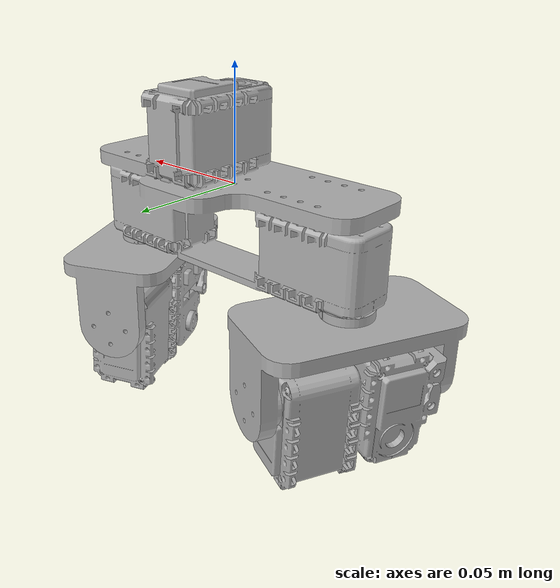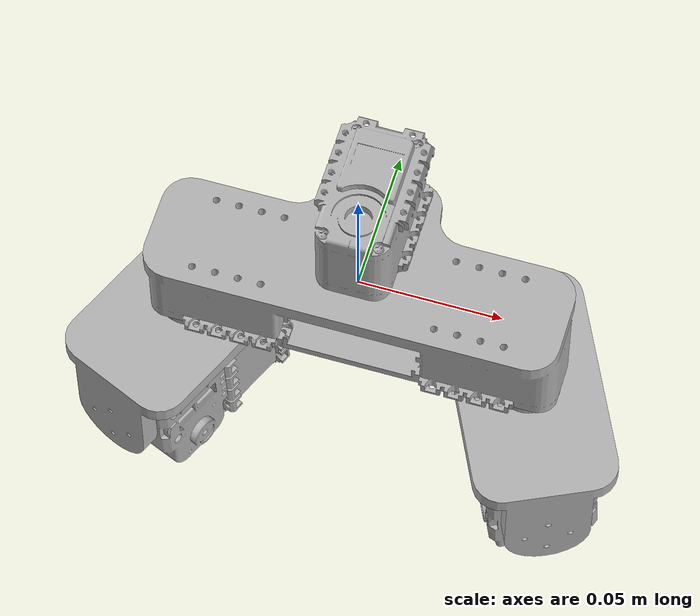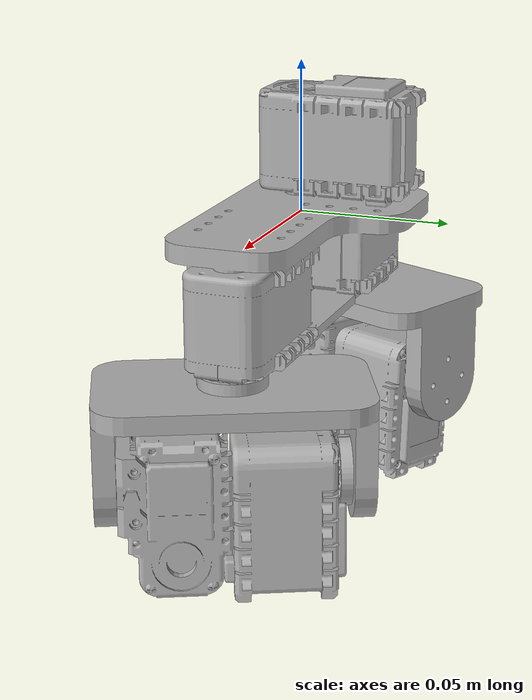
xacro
<?xml version="1.0" encoding="utf-8"?>

<robot name="pelvis" xmlns:xacro="http://www.ros.org/wiki/xacro">
    <link
            name="base_link">
        <inertial>
            <origin
                    xyz="8.2334E-06 -0.0035862 -0.0041456"
                    rpy="0 0 0" />
            <mass
                    value="0.1973" />
            <inertia
                    ixx="3.8375E-05"
                    ixy="-1.8663E-09"
                    ixz="3.853E-08"
                    iyy="0.00010445"
                    iyz="2.3787E-07"
                    izz="9.554E-05" />
        </inertial>
        <visual>
            <origin
                    xyz="0 0 0"
                    rpy="0 0 0" />
            <geometry>
                <mesh
                        filename="package://rocnikovy_projekt/meshes/pelvis_link.STL" />
            </geometry>
            <material
                    name="">
                <color
                        rgba="0.69804 0.69804 0.69804 1" />
            </material>
        </visual>
        <collision>
            <origin
                    xyz="0 0 0"
                    rpy="0 0 0" />
            <geometry>
                <mesh
                        filename="package://rocnikovy_projekt/meshes/pelvis_link.STL" />
            </geometry>
        </collision>
    </link>
    <link
            name="left_hip_link">
        <inertial>
            <origin
                    xyz="4.1959E-14 -0.0015544 0.02042"
                    rpy="0 0 0" />
            <mass
                    value="0.0628" />
            <inertia
                    ixx="6.3024E-05"
                    ixy="-1.2716E-15"
                    ixz="-1.9084E-15"
                    iyy="1.705E-05"
                    iyz="-7.4568E-08"
                    izz="6.3748E-05" />
        </inertial>
        <visual>
            <origin
                    xyz="0 0 0"
                    rpy="0 0 0" />
            <geometry>
                <mesh
                        filename="package://rocnikovy_projekt/meshes/left_hip_link.STL" />
            </geometry>
            <material
                    name="">
                <color
                        rgba="0.69804 0.69804 0.69804 1" />
            </material>
        </visual>
        <collision>
            <origin
                    xyz="0 0 0"
                    rpy="0 0 0" />
            <geometry>
                <mesh
                        filename="package://rocnikovy_projekt/meshes/left_hip_link.STL" />
            </geometry>
        </collision>
    </link>
    <joint
            name="left_hip_joint"
            type="revolute">
        <origin
                xyz="0.0605 0 -0.03048"
                rpy="3.1416 0 0.44455" />
        <parent
                link="base_link" />
        <child
                link="left_hip_link" />
        <axis
                xyz="0 0 1" />
        <limit
                lower="-1"
                upper="1"
                effort="2"
                velocity="0.5" />
    </joint>

    <transmission name="trans_left_hip">
        <type>transmission_interface/SimpleTransmission</type>
        <joint name="left_hip_joint">
            <hardwareInterface>EffortJointInterface</hardwareInterface>
        </joint>
        <actuator name="motor_left_hip">
            <hardwareInterface>EffortJointInterface</hardwareInterface>
            <mechanicalReduction>1</mechanicalReduction>
        </actuator>
    </transmission>

    <link
            name="left_hip_servo_link">
        <inertial>
            <origin
                    xyz="-0.00022073 -0.010829 -0.0019615"
                    rpy="0 0 0" />
            <mass
                    value="0.1072" />
            <inertia
                    ixx="2.6938E-05"
                    ixy="2.2503E-07"
                    ixz="3.7327E-09"
                    iyy="1.623E-05"
                    iyz="2.2528E-07"
                    izz="2.751E-05" />
        </inertial>
        <visual>
            <origin
                    xyz="0 0 0"
                    rpy="0 0 0" />
            <geometry>
                <mesh
                        filename="package://rocnikovy_projekt/meshes/left_hip_servo_link.STL" />
            </geometry>
            <material
                    name="">
                <color
                        rgba="0.69804 0.69804 0.69804 1" />
            </material>
        </visual>
        <collision>
            <origin
                    xyz="0 0 0"
                    rpy="0 0 0" />
            <geometry>
                <mesh
                        filename="package://rocnikovy_projekt/meshes/left_hip_servo_link.STL" />
            </geometry>
        </collision>
    </link>
    <joint
            name="left_hip_servo_joint"
            type="revolute">
        <origin
                xyz="0 0 0.03902"
                rpy="-1.5708 -0.053854 -3.1416" />
        <parent
                link="left_hip_link" />
        <child
                link="left_hip_servo_link" />
        <axis
                xyz="0 0 1" />
        <limit
                lower="-1"
                upper="1"
                effort="2"
                velocity="0.5" />
    </joint>

    <transmission name="trans_left_hip_servo">
        <type>transmission_interface/SimpleTransmission</type>
        <joint name="left_hip_servo_joint">
            <hardwareInterface>EffortJointInterface</hardwareInterface>
        </joint>
        <actuator name="motor_left_hip_servo">
            <hardwareInterface>EffortJointInterface</hardwareInterface>
            <mechanicalReduction>1</mechanicalReduction>
        </actuator>
    </transmission>

    <link
            name="right_hip_link">
        <inertial>
            <origin
                    xyz="4.05750502641133E-11 0.00155391487199414 0.0204201314876415"
                    rpy="0 0 0" />
            <mass
                    value="0.0628" />
            <inertia
                    ixx="6.30242552027685E-05"
                    ixy="-2.22070142968391E-15"
                    ixz="-2.19765597267739E-15"
                    iyy="1.7050000604469E-05"
                    iyz="7.4543752491888E-08"
                    izz="6.37480504244599E-05" />
        </inertial>
        <visual>
            <origin
                    xyz="0 0 0"
                    rpy="0 0 0" />
            <geometry>
                <mesh
                        filename="package://rocnikovy_projekt/meshes/right_hip_link.STL" />
            </geometry>
            <material
                    name="">
                <color
                        rgba="0.698039215686274 0.698039215686274 0.698039215686274 1" />
            </material>
        </visual>
        <collision>
            <origin
                    xyz="0 0 0"
                    rpy="0 0 0" />
            <geometry>
                <mesh
                        filename="package://rocnikovy_projekt/meshes/right_hip_link.STL" />
            </geometry>
        </collision>
    </link>
    <joint
            name="right_hip_joint"
            type="revolute">
        <origin
                xyz="-0.0605 0 -0.03048"
                rpy="-3.1416 0 2.7299" />
        <parent
                link="base_link" />
        <child
                link="right_hip_link" />
        <axis
                xyz="0 0 1" />
        <limit
                lower="-1"
                upper="1"
                effort="2"
                velocity="0.5" />
    </joint>

    <transmission name="trans_right_hip">
        <type>transmission_interface/SimpleTransmission</type>
        <joint name="right_hip_joint">
            <hardwareInterface>EffortJointInterface</hardwareInterface>
        </joint>
        <actuator name="motor_right_hip">
            <hardwareInterface>EffortJointInterface</hardwareInterface>
            <mechanicalReduction>1</mechanicalReduction>
        </actuator>
    </transmission>

    <link
            name="right_hip_servo_link">
        <inertial>
            <origin
                    xyz="0.00019044 -0.010829 -0.0019918"
                    rpy="0 0 0" />
            <mass
                    value="0.1072" />
            <inertia
                    ixx="2.6938E-05"
                    ixy="-2.5072E-07"
                    ixz="3.7327E-09"
                    iyy="1.623E-05"
                    iyz="2.5096E-07"
                    izz="2.751E-05" />
        </inertial>
        <visual>
            <origin
                    xyz="0 0 0"
                    rpy="0 0 0" />
            <geometry>
                <mesh
                        filename="package://rocnikovy_projekt/meshes/right_hip_servo_link.STL" />
            </geometry>
            <material
                    name="">
                <color
                        rgba="0.69804 0.69804 0.69804 1" />
            </material>
        </visual>
        <collision>
            <origin
                    xyz="0 0 0"
                    rpy="0 0 0" />
            <geometry>
                <mesh
                        filename="package://rocnikovy_projekt/meshes/right_hip_servo_link.STL" />
            </geometry>
        </collision>
    </link>
    <joint
            name="right_hip_servo_joint"
            type="revolute">
        <origin
                xyz="0 0 0.03902"
                rpy="-1.5708 -0.056122 0" />
        <parent
                link="right_hip_link" />
        <child
                link="right_hip_servo_link" />
        <axis
                xyz="0 0 1" />
        <limit
                lower="0"
                upper="0"
                effort="2"
                velocity="0.5" />
    </joint>

    <transmission name="trans_right_hip_servo">
        <type>transmission_interface/SimpleTransmission</type>
        <joint name="right_hip_servo_joint">
            <hardwareInterface>EffortJointInterface</hardwareInterface>
        </joint>
        <actuator name="motor_right_hip_servo">
            <hardwareInterface>EffortJointInterface</hardwareInterface>
            <mechanicalReduction>1</mechanicalReduction>
        </actuator>
    </transmission>
</robot>
